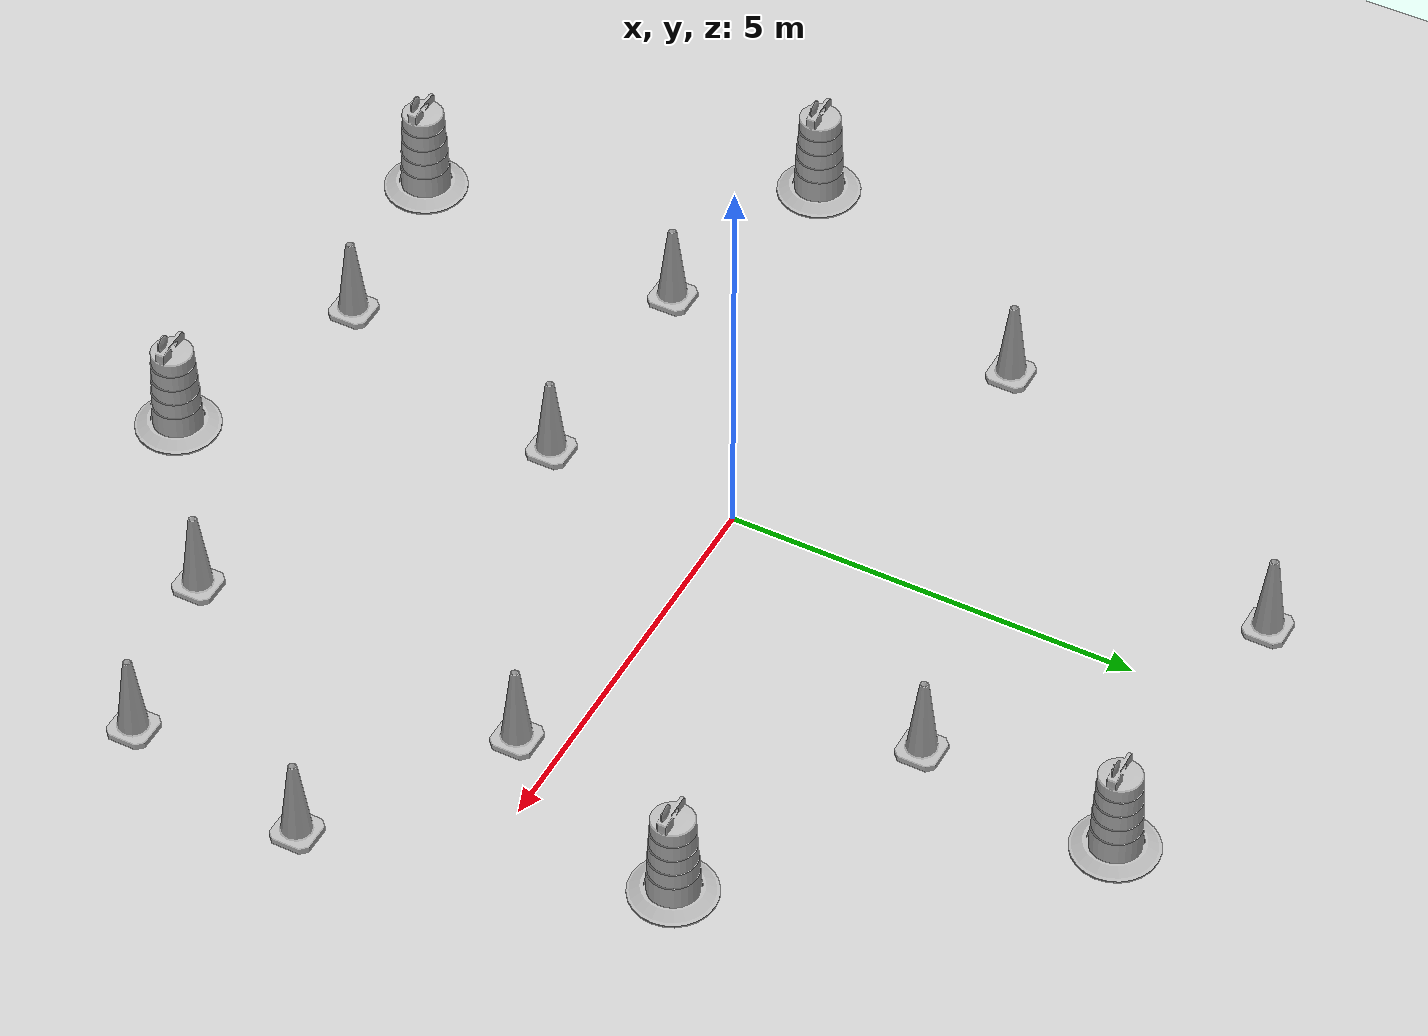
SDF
<sdf version="1.7">
 <world name="default">
  <light name="sun" type="directional">
   <pose>0 0 10 0 -0 0</pose>
   <diffuse>0.8 0.8 0.8 1</diffuse>
   <specular>0.2 0.2 0.2 1</specular>
   <attenuation>
    <range>1000</range>
    <constant>0.9</constant>
    <linear>0.01</linear>
    <quadratic>0.001</quadratic>
   </attenuation>
   <direction>-0.5 0.1 -0.9</direction>
   <spot><inner_angle>0</inner_angle><outer_angle>0</outer_angle><falloff>0</falloff></spot>
  </light>
  <model name="ground_plane">
   <static>1</static>
   <link name="link">
    <collision name="collision">
     <geometry><plane><normal>0 0 1</normal><size>100 100</size></plane></geometry>
     <surface>
      <contact><collide_bitmask>65535</collide_bitmask></contact>
      <friction><ode><mu>100</mu><mu2>50</mu2></ode></friction>
     </surface>
    </collision>
    <visual name="visual">
     <cast_shadows>0</cast_shadows>
     <geometry><plane><normal>0 0 1</normal><size>100 100</size></plane></geometry>
     <material>
      <script><uri>file://media/materials/scripts/gazebo.material</uri><name>Gazebo/Grey</name></script>
     </material>
    </visual>
   </link>
  </model>
  <gravity>0 0 -9.8</gravity>
  <magnetic_field>6e-06 2.3e-05 -4.2e-05</magnetic_field>
  <atmosphere type="adiabatic"/>
  <physics type="ode">
   <max_step_size>0.001</max_step_size>
   <real_time_factor>1</real_time_factor>
   <real_time_update_rate>1000</real_time_update_rate>
  </physics>
  <scene><ambient>0.4 0.4 0.4 1</ambient><background>0.7 0.7 0.7 1</background><shadows>1</shadows></scene>
  <audio><device>default</device></audio>
  <spherical_coordinates>
   <surface_model>EARTH_WGS84</surface_model>
   <latitude_deg>0</latitude_deg>
   <longitude_deg>0</longitude_deg>
   <elevation>0</elevation>
   <heading_deg>0</heading_deg>
  </spherical_coordinates>
  <model name="Construction Barrel">
   <link name="link">
    <inertial>
     <pose>0 0 0.4 0 -0 0</pose>
     <mass>500</mass>
     <inertia><ixx>51.2096</ixx><iyy>51.2096</iyy><izz>25</izz><ixy>0</ixy><ixz>0</ixz><iyz>0</iyz></inertia>
    </inertial>
    <collision name="collision">
     <geometry><mesh><uri>model://construction_barrel/meshes/construction_barrel.dae</uri></mesh></geometry>
    </collision>
    <visual name="visual">
     <geometry><mesh><uri>model://construction_barrel/meshes/construction_barrel.dae</uri></mesh></geometry>
    </visual>
   </link>
   <pose>5.20536 2.00615 -3e-06 -6e-06 -5e-06 -2.8e-05</pose>
  </model>
  <model name="Construction Barrel_0">
   <link name="link">
    <inertial>
     <pose>0 0 0.4 0 -0 0</pose>
     <mass>500</mass>
     <inertia><ixx>51.2096</ixx><iyy>51.2096</iyy><izz>25</izz><ixy>0</ixy><ixz>0</ixz><iyz>0</iyz></inertia>
    </inertial>
    <collision name="collision">
     <geometry><mesh><uri>model://construction_barrel/meshes/construction_barrel.dae</uri></mesh></geometry>
    </collision>
    <visual name="visual">
     <geometry><mesh><uri>model://construction_barrel/meshes/construction_barrel.dae</uri></mesh></geometry>
    </visual>
   </link>
   <pose>2.42739 5.92533 -0 0 -0 -2.7e-05</pose>
  </model>
  <model name="Construction Cone">
   <link name="link">
    <collision name="collision">
     <geometry>
      <mesh><scale>10 10 10</scale><uri>model://construction_cone/meshes/construction_cone.dae</uri></mesh>
     </geometry>
    </collision>
    <visual name="visual">
     <geometry>
      <mesh><scale>10 10 10</scale><uri>model://construction_cone/meshes/construction_cone.dae</uri></mesh>
     </geometry>
    </visual>
    <inertial>
     <inertia><ixx>1</ixx><ixy>0</ixy><ixz>0</ixz><iyy>1</iyy><iyz>0</iyz><izz>1</izz></inertia>
     <mass>1</mass>
    </inertial>
   </link>
   <pose>4.09378 -0.528309 -0 0 -0 0</pose>
  </model>
  <model name="Construction Cone_0">
   <link name="link">
    <collision name="collision">
     <geometry>
      <mesh><scale>10 10 10</scale><uri>model://construction_cone/meshes/construction_cone.dae</uri></mesh>
     </geometry>
    </collision>
    <visual name="visual">
     <geometry>
      <mesh><scale>10 10 10</scale><uri>model://construction_cone/meshes/construction_cone.dae</uri></mesh>
     </geometry>
    </visual>
    <inertial>
     <inertia><ixx>1</ixx><ixy>0</ixy><ixz>0</ixz><iyy>1</iyy><iyz>0</iyz><izz>1</izz></inertia>
     <mass>1</mass>
    </inertial>
   </link>
   <pose>0.023667 -2.34985 -0 0 -0 0</pose>
  </model>
  <model name="Construction Cone_0_clone">
   <link name="link">
    <collision name="collision">
     <geometry>
      <mesh><scale>10 10 10</scale><uri>model://construction_cone/meshes/construction_cone.dae</uri></mesh>
     </geometry>
    </collision>
    <visual name="visual">
     <geometry>
      <mesh><scale>10 10 10</scale><uri>model://construction_cone/meshes/construction_cone.dae</uri></mesh>
     </geometry>
    </visual>
    <inertial>
     <inertia><ixx>1</ixx><ixy>0</ixy><ixz>0</ixz><iyy>1</iyy><iyz>0</iyz><izz>1</izz></inertia>
     <mass>1</mass>
    </inertial>
   </link>
   <pose>3.75128 -4.82649 -9e-06 0 -1e-06 0</pose>
  </model>
  <model name="Construction Cone_0_clone_0">
   <link name="link">
    <collision name="collision">
     <geometry>
      <mesh><scale>10 10 10</scale><uri>model://construction_cone/meshes/construction_cone.dae</uri></mesh>
     </geometry>
    </collision>
    <visual name="visual">
     <geometry>
      <mesh><scale>10 10 10</scale><uri>model://construction_cone/meshes/construction_cone.dae</uri></mesh>
     </geometry>
    </visual>
    <inertial>
     <inertia><ixx>1</ixx><ixy>0</ixy><ixz>0</ixz><iyy>1</iyy><iyz>0</iyz><izz>1</izz></inertia>
     <mass>1</mass>
    </inertial>
   </link>
   <pose>-1.27785 6.07824 0 -1e-06 0 0</pose>
  </model>
  <model name="Construction Cone_0_clone_1">
   <link name="link">
    <collision name="collision">
     <geometry>
      <mesh><scale>10 10 10</scale><uri>model://construction_cone/meshes/construction_cone.dae</uri></mesh>
     </geometry>
    </collision>
    <visual name="visual">
     <geometry>
      <mesh><scale>10 10 10</scale><uri>model://construction_cone/meshes/construction_cone.dae</uri></mesh>
     </geometry>
    </visual>
    <inertial>
     <inertia><ixx>1</ixx><ixy>0</ixy><ixz>0</ixz><iyy>1</iyy><iyz>0</iyz><izz>1</izz></inertia>
     <mass>1</mass>
    </inertial>
   </link>
   <pose>6.38402 -1.96897 -0 0 -1e-06 0</pose>
  </model>
  <model name="Construction Cone_0_clone_2">
   <link name="link">
    <collision name="collision">
     <geometry>
      <mesh><scale>10 10 10</scale><uri>model://construction_cone/meshes/construction_cone.dae</uri></mesh>
     </geometry>
    </collision>
    <visual name="visual">
     <geometry>
      <mesh><scale>10 10 10</scale><uri>model://construction_cone/meshes/construction_cone.dae</uri></mesh>
     </geometry>
    </visual>
    <inertial>
     <inertia><ixx>1</ixx><ixy>0</ixy><ixz>0</ixz><iyy>1</iyy><iyz>0</iyz><izz>1</izz></inertia>
     <mass>1</mass>
    </inertial>
   </link>
   <pose>5.92884 -4.32522 -0 0 -1e-06 0</pose>
  </model>
  <model name="Construction Cone_0_clone_3">
   <link name="link">
    <collision name="collision">
     <geometry>
      <mesh><scale>10 10 10</scale><uri>model://construction_cone/meshes/construction_cone.dae</uri></mesh>
     </geometry>
    </collision>
    <visual name="visual">
     <geometry>
      <mesh><scale>10 10 10</scale><uri>model://construction_cone/meshes/construction_cone.dae</uri></mesh>
     </geometry>
    </visual>
    <inertial>
     <inertia><ixx>1</ixx><ixy>0</ixy><ixz>0</ixz><iyy>1</iyy><iyz>0</iyz><izz>1</izz></inertia>
     <mass>1</mass>
    </inertial>
   </link>
   <pose>-0.910895 -5.53183 -0 0 -0 0</pose>
  </model>
  <model name="Construction Cone_0_clone_4">
   <link name="link">
    <collision name="collision">
     <geometry>
      <mesh><scale>10 10 10</scale><uri>model://construction_cone/meshes/construction_cone.dae</uri></mesh>
     </geometry>
    </collision>
    <visual name="visual">
     <geometry>
      <mesh><scale>10 10 10</scale><uri>model://construction_cone/meshes/construction_cone.dae</uri></mesh>
     </geometry>
    </visual>
    <inertial>
     <inertia><ixx>1</ixx><ixy>0</ixy><ixz>0</ixz><iyy>1</iyy><iyz>0</iyz><izz>1</izz></inertia>
     <mass>1</mass>
    </inertial>
   </link>
   <pose>-2.86932 -2.31118 -0 0 -0 0</pose>
  </model>
  <model name="Construction Cone_0_clone_5">
   <link name="link">
    <collision name="collision">
     <geometry>
      <mesh><scale>10 10 10</scale><uri>model://construction_cone/meshes/construction_cone.dae</uri></mesh>
     </geometry>
    </collision>
    <visual name="visual">
     <geometry>
      <mesh><scale>10 10 10</scale><uri>model://construction_cone/meshes/construction_cone.dae</uri></mesh>
     </geometry>
    </visual>
    <inertial>
     <inertia><ixx>1</ixx><ixy>0</ixy><ixz>0</ixz><iyy>1</iyy><iyz>0</iyz><izz>1</izz></inertia>
     <mass>1</mass>
    </inertial>
   </link>
   <pose>-3.57726 1.78791 -0 0 -0 0</pose>
  </model>
  <model name="Construction Barrel_clone">
   <link name="link">
    <inertial>
     <pose>0 0 0.4 0 -0 0</pose>
     <mass>500</mass>
     <inertia><ixx>51.2096</ixx><iyy>51.2096</iyy><izz>25</izz><ixy>0</ixy><ixz>0</ixz><iyz>0</iyz></inertia>
    </inertial>
    <collision name="collision">
     <geometry><mesh><uri>model://construction_barrel/meshes/construction_barrel.dae</uri></mesh></geometry>
    </collision>
    <visual name="visual">
     <geometry><mesh><uri>model://construction_barrel/meshes/construction_barrel.dae</uri></mesh></geometry>
    </visual>
   </link>
   <pose>-3.21245 -5.86664 -3e-06 -6e-06 -5e-06 -2.8e-05</pose>
  </model>
  <model name="Construction Barrel_clone_0">
   <link name="link">
    <inertial>
     <pose>0 0 0.4 0 -0 0</pose>
     <mass>500</mass>
     <inertia><ixx>51.2096</ixx><iyy>51.2096</iyy><izz>25</izz><ixy>0</ixy><ixz>0</ixz><iyz>0</iyz></inertia>
    </inertial>
    <collision name="collision">
     <geometry><mesh><uri>model://construction_barrel/meshes/construction_barrel.dae</uri></mesh></geometry>
    </collision>
    <visual name="visual">
     <geometry><mesh><uri>model://construction_barrel/meshes/construction_barrel.dae</uri></mesh></geometry>
    </visual>
   </link>
   <pose>-5.36458 -1.64273 -1e-06 3e-06 7e-06 -2.8e-05</pose>
  </model>
  <model name="Construction Barrel_clone_1">
   <link name="link">
    <inertial>
     <pose>0 0 0.4 0 -0 0</pose>
     <mass>500</mass>
     <inertia><ixx>51.2096</ixx><iyy>51.2096</iyy><izz>25</izz><ixy>0</ixy><ixz>0</ixz><iyz>0</iyz></inertia>
    </inertial>
    <collision name="collision">
     <geometry><mesh><uri>model://construction_barrel/meshes/construction_barrel.dae</uri></mesh></geometry>
    </collision>
    <visual name="visual">
     <geometry><mesh><uri>model://construction_barrel/meshes/construction_barrel.dae</uri></mesh></geometry>
    </visual>
   </link>
   <pose>1.65948 -6.37762 -3e-06 -6e-06 -5e-06 -2.8e-05</pose>
  </model>
  <model name="Construction Cone_clone">
   <link name="link">
    <collision name="collision">
     <geometry>
      <mesh><scale>10 10 10</scale><uri>model://construction_cone/meshes/construction_cone.dae</uri></mesh>
     </geometry>
    </collision>
    <visual name="visual">
     <geometry>
      <mesh><scale>10 10 10</scale><uri>model://construction_cone/meshes/construction_cone.dae</uri></mesh>
     </geometry>
    </visual>
    <inertial>
     <inertia><ixx>1</ixx><ixy>0</ixy><ixz>0</ixz><iyy>1</iyy><iyz>0</iyz><izz>1</izz></inertia>
     <mass>1</mass>
    </inertial>
   </link>
   <pose>2.16793 3.46816 -0 0 -0 0</pose>
  </model>
 </world>
</sdf>
